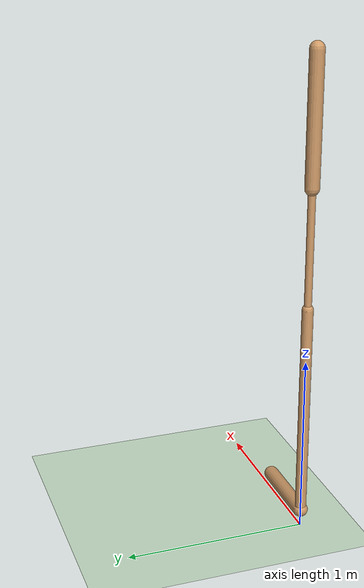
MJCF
<mujoco model="walker2d">
  <compiler angle="degree" inertiafromgeom="true" />
  <default>
    <joint armature="0.01" damping=".1" limited="true" />
    <geom conaffinity="0" condim="3" contype="1" density="1000" friction=".7 .1 .1" rgba="0.8 0.6 .4 1" />
  </default>
  <option integrator="RK4" timestep="0.002" />
  <worldbody>
    <light cutoff="100" diffuse="1 1 1" dir="-0 0 -1.3" directional="true" exponent="1" pos="0 0 1.3" specular=".1 .1 .1" />
    <geom conaffinity="1" condim="3" name="floor" pos="0 0 0" rgba="0.8 0.9 0.8 1" size="40 40 40" type="plane" material="MatPlane" />
    <body name="torso" pos="0 0 2.3009947299957276">
      <camera name="track" mode="trackcom" pos="0 -5 -1.25" xyaxes="1 0 0 0 0 1" />
      <joint armature="0" axis="1 0 0" damping="0" limited="false" name="rootx" pos="0 0 -1.25" stiffness="0" type="slide" />
      <joint armature="0" axis="0 0 1" damping="0" limited="false" name="rootz" pos="0 0 -1.25" ref="1.25" stiffness="0" type="slide" />
      <joint armature="0" axis="0 1 0" damping="0" limited="false" name="rooty" pos="0 0 0" stiffness="0" type="hinge" />
      <geom friction="0.9" name="torso_geom" size="0.03902418538928032 0.3450051546096802" type="capsule" />
      <body name="thigh" pos="0 0 -0.3450051546096802">
        <joint axis="0 -1 0" name="thigh_joint" pos="0 0 0" range="-150 0" type="hinge" />
        <site name="torso_thigh_site" pos="0 0 0" size="0.01" type="sphere" rgba="1 0 0 0.5" />
        <geom friction="0.9" pos="0 0 -0.3256875276565552" name="thigh_geom" size="0.020397774875164032 0.3256875276565552" type="capsule" />
        <body name="leg" pos="0 0 -1.2536823153495789">
          <joint axis="0 -1 0" name="leg_joint" pos="0 0 0.6023072600364685" range="-150 0" type="hinge" />
          <site name="thigh_leg_site" pos="0 0 0.25" size="0.01" type="sphere" rgba="1 0 0 0.5" />
          <geom friction="0.9" name="leg_geom" size="0.030945904552936554 0.6023072600364685" type="capsule" />
          <body name="foot" pos="0.4238000810146332 0 -0.7023072600364685">
            <joint axis="0 -1 0" name="foot_joint" pos="-0.4238000810146332 0 0.1" range="-45 45" type="hinge" />
            <site name="leg_foot_site" pos="-0.2 0 0.1" size="0.01" type="sphere" rgba="1 0 0 0.5" />
            <geom friction="0.9" pos="-0.2119000405073166 0 0.1" quat="0.70710678118654757 0 -0.70710678118654746 0" name="foot_geom" size="0.04113747924566269 0.2119000405073166" type="capsule" />
          </body>
        </body>
      </body>

      <body name="thigh_left" pos="0 0 -0.3450051546096802">
        <joint axis="0 -1 0" name="thigh_left_joint" pos="0 0 0" range="-150 0" type="hinge" />
        <site name="torso_thigh_left_site" pos="0 0 0" size="0.01" type="sphere" rgba="1 0 0 0.5" />
        <geom friction="0.9" name="thigh_left_geom" rgba=".7 .3 .6 1" size="0.020397774875164032 0.3256875276565552" pos="0 0 -0.3256875276565552" type="capsule" />
        <body name="leg_left" pos="0 0 -1.2536823153495789">
          <joint axis="0 -1 0" name="leg_left_joint" pos="0 0 0.6023072600364685" range="-150 0" type="hinge" />
          <site name="thigh_leg_left_site" pos="0 0 0.25" size="0.01" type="sphere" rgba="1 0 0 0.5" />
          <geom friction="0.9" name="leg_left_geom" rgba=".7 .3 .6 1" size="0.030945904552936554 0.6023072600364685" type="capsule" />
          <body name="foot_left" pos="0.4238000810146332 0 -0.7023072600364685">
            <joint axis="0 -1 0" name="foot_left_joint" pos="-0.4238000810146332 0 0.1" range="-45 45" type="hinge" />
            <site name="leg_foot_left_site" pos="-0.2 0 0.1" size="0.01" type="sphere" rgba="1 0 0 0.5" />
            <geom friction="1.9" name="foot_left_geom" rgba=".7 .3 .6 1" size="0.04113747924566269 0.2119000405073166" pos="-0.2119000405073166 0 0.1" type="capsule" quat="0.70710678118654757 0 -0.70710678118654746 0" />
          </body>
        </body>
      </body>
    </body>
  </worldbody>
  <actuator>

    <motor ctrllimited="true" ctrlrange="-1.0 1.0" gear="24.09040987546708" joint="thigh_joint" />
    <motor ctrllimited="true" ctrlrange="-1.0 1.0" gear="144.1997376115452" joint="leg_joint" />
    <motor ctrllimited="true" ctrlrange="-1.0 1.0" gear="99.61021818112798" joint="foot_joint" />
    <motor ctrllimited="true" ctrlrange="-1.0 1.0" gear="24.09040987546708" joint="thigh_left_joint" />
    <motor ctrllimited="true" ctrlrange="-1.0 1.0" gear="144.1997376115452" joint="leg_left_joint" />
    <motor ctrllimited="true" ctrlrange="-1.0 1.0" gear="99.61021818112798" joint="foot_left_joint" />

  </actuator>
    <asset>
        <texture type="skybox" builtin="gradient" rgb1=".4 .5 .6" rgb2="0 0 0" width="100" height="100" />
        <texture builtin="flat" height="1278" mark="cross" markrgb="1 1 1" name="texgeom" random="0.01" rgb1="0.8 0.6 0.4" rgb2="0.8 0.6 0.4" type="cube" width="127" />
        <texture builtin="checker" height="100" name="texplane" rgb1="0 0 0" rgb2="0.8 0.8 0.8" type="2d" width="100" />
        <material name="MatPlane" reflectance="0.5" shininess="1" specular="1" texrepeat="60 60" texture="texplane" />
        <material name="geom" texture="texgeom" texuniform="true" />
    </asset>

  <sensor>
    <force site="torso_thigh_site" name="torso_thigh_sensor" />
    <force site="thigh_leg_site" name="thigh_leg_sensor" />
    <force site="leg_foot_site" name="leg_foot_sensor" />
    <force site="torso_thigh_left_site" name="torso_thigh_left_sensor" />
    <force site="thigh_leg_left_site" name="thigh_leg_left_sensor" />
    <force site="leg_foot_left_site" name="leg_foot_left_sensor" />
  </sensor>
</mujoco>
